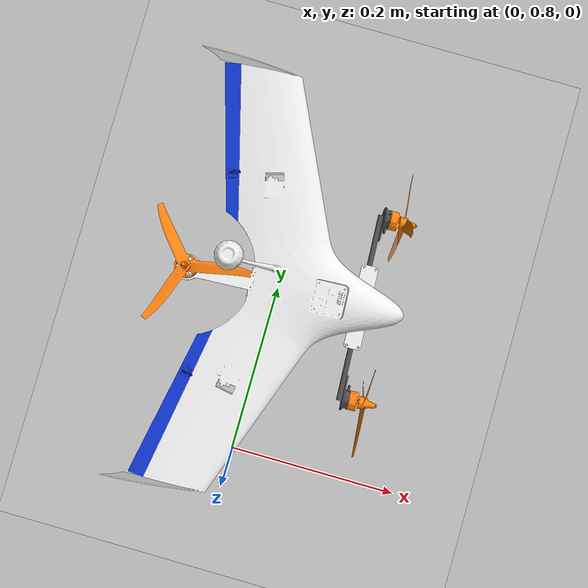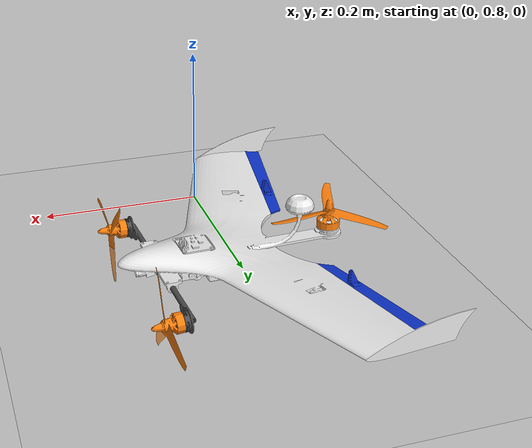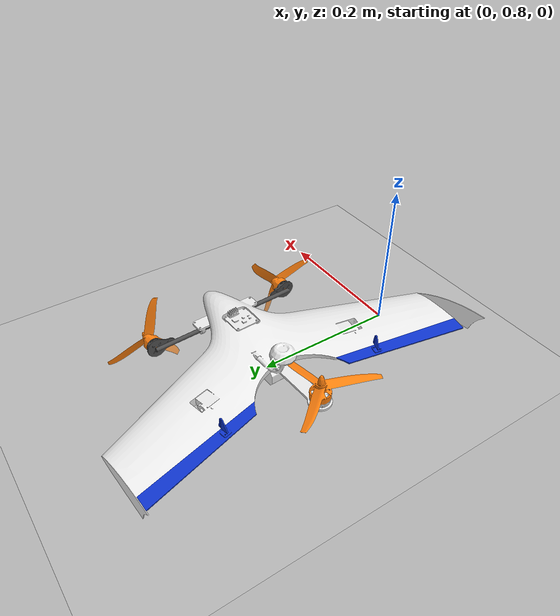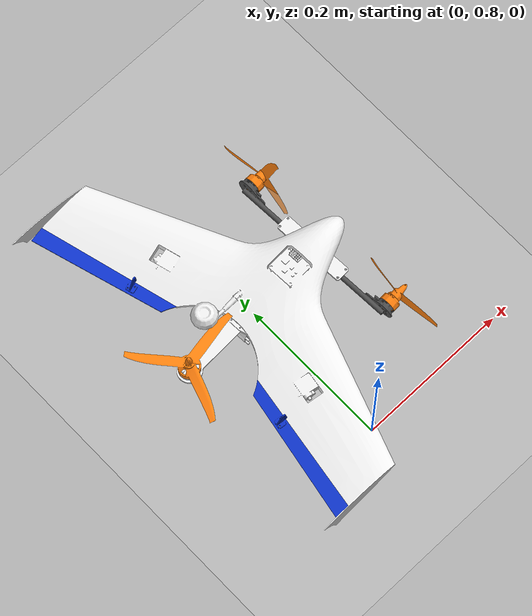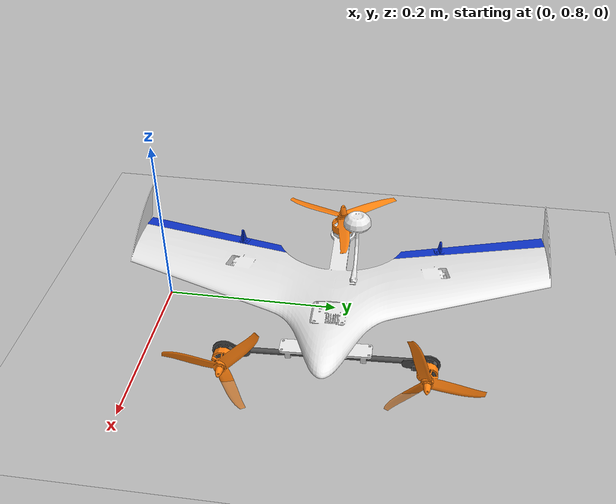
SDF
<sdf version="1.6">
 <world name="default">
  <model name="ground_plane">
   <static>1</static>
   <link name="link">
    <collision name="collision">
     <geometry><plane><normal>0 0 1</normal><size>100 100</size></plane></geometry>
     <surface>
      <contact><collide_bitmask>65535</collide_bitmask></contact>
      <friction><ode><mu>100</mu><mu2>50</mu2></ode></friction>
     </surface>
    </collision>
    <visual name="visual">
     <cast_shadows>0</cast_shadows>
     <geometry><plane><normal>0 0 1</normal><size>100 100</size></plane></geometry>
     <material>
      <script><uri>file://media/materials/scripts/gazebo.material</uri><name>Gazebo/Grey</name></script>
     </material>
    </visual>
   </link>
  </model>
  <model name="MiniHawk_0">
   <link name="link_1">
    <inertial>
     <mass>0.388</mass>
     <inertia>
      <ixx>0.107401</ixx>
      <ixy>-0.0018686</ixy>
      <ixz>-0.0144101</ixz>
      <iyy>0.176693</iyy>
      <iyz>-0.0010212</iyz>
      <izz>0.264048</izz>
     </inertia>
     <pose>0.013118 0.000197 0.004436 0 -0 0</pose>
    </inertial>
    <pose>0 0 0 3.14159 -0 0</pose>
    <visual name="visual">
     <geometry><mesh><uri>/home/steve/Desktop/OBJ2/MiniHawkBase.obj</uri><scale>1 1 1</scale></mesh></geometry>
     <material>
      <lighting>1</lighting>
      <script><uri>file://media/materials/scripts/gazebo.material</uri><name>Gazebo/White</name></script>
      <shader type="pixel"><normal_map>__default__</normal_map></shader>
      <emissive>0 0 0 1</emissive>
      <ambient>0.9 0.9 0.9 1</ambient>
      <diffuse>0.9 0.9 0.9 1</diffuse>
      <specular>0.01 0.01 0.01 1</specular>
     </material>
    </visual>
    <collision name="collision">
     <geometry><mesh><uri>/home/steve/Desktop/OBJ2/MiniHawkBase.obj</uri><scale>1 1 1</scale></mesh></geometry>
     <surface>
      <friction>
       <ode><mu>1</mu><mu2>1</mu2><fdir1>0 0 0</fdir1><slip1>0</slip1><slip2>0</slip2></ode>
       <torsional>
        <coefficient>1</coefficient>
        <patch_radius>0</patch_radius>
        <surface_radius>0</surface_radius>
        <use_patch_radius>1</use_patch_radius>
        <ode><slip>0</slip></ode>
       </torsional>
      </friction>
      <bounce><restitution_coefficient>0</restitution_coefficient><threshold>1e+06</threshold></bounce>
      <contact>
       <collide_without_contact>0</collide_without_contact>
       <collide_without_contact_bitmask>1</collide_without_contact_bitmask>
       <collide_bitmask>1</collide_bitmask>
       <ode>
        <soft_cfm>0</soft_cfm>
        <soft_erp>0.2</soft_erp>
        <kp>1e+13</kp>
        <kd>1</kd>
        <max_vel>0.01</max_vel>
        <min_depth>0</min_depth>
       </ode>
       <bullet>
        <split_impulse>1</split_impulse>
        <split_impulse_penetration_threshold>-0.01</split_impulse_penetration_threshold>
        <soft_cfm>0</soft_cfm>
        <soft_erp>0.2</soft_erp>
        <kp>1e+13</kp>
        <kd>1</kd>
       </bullet>
      </contact>
     </surface>
    </collision>
   </link>
   <link name="link_2">
    <inertial>
     <mass>0.002</mass>
     <inertia>
      <ixx>0.0059408</ixx>
      <ixy>-0.003228</ixy>
      <ixz>1.85e-05</ixz>
      <iyy>0.0018158</iyy>
      <iyz>3.22e-05</iyz>
      <izz>0.0077561</izz>
     </inertia>
     <pose>-0.094427 -0.164548 0.000979 0 -0 0</pose>
    </inertial>
    <pose>0 0 0 -3.14159 0 0</pose>
    <visual name="visual">
     <geometry>
      <mesh><uri>/home/steve/Desktop/OBJ2/MiniHawkElevonLeft.obj</uri><scale>1 1 1</scale></mesh>
     </geometry>
     <material>
      <lighting>1</lighting>
      <script><uri>file://media/materials/scripts/gazebo.material</uri><name>Gazebo/Grey</name></script>
      <shader type="pixel"><normal_map>__default__</normal_map></shader>
      <emissive>0 0 0 1</emissive>
      <ambient>0.05 0.2 0.8 1</ambient>
      <diffuse>0.05 0.2 0.8 1</diffuse>
      <specular>0.01 0.01 0.01 1</specular>
     </material>
    </visual>
    <collision name="collision">
     <geometry>
      <mesh><uri>/home/steve/Desktop/OBJ2/MiniHawkElevonLeft.obj</uri><scale>1 1 1</scale></mesh>
     </geometry>
     <surface>
      <friction>
       <ode><mu>1</mu><mu2>1</mu2><fdir1>0 0 0</fdir1><slip1>0</slip1><slip2>0</slip2></ode>
       <torsional>
        <coefficient>1</coefficient>
        <patch_radius>0</patch_radius>
        <surface_radius>0</surface_radius>
        <use_patch_radius>1</use_patch_radius>
        <ode><slip>0</slip></ode>
       </torsional>
      </friction>
      <bounce><restitution_coefficient>0</restitution_coefficient><threshold>1e+06</threshold></bounce>
      <contact>
       <collide_without_contact>0</collide_without_contact>
       <collide_without_contact_bitmask>1</collide_without_contact_bitmask>
       <collide_bitmask>1</collide_bitmask>
       <ode>
        <soft_cfm>0</soft_cfm>
        <soft_erp>0.2</soft_erp>
        <kp>1e+13</kp>
        <kd>1</kd>
        <max_vel>0.01</max_vel>
        <min_depth>0</min_depth>
       </ode>
       <bullet>
        <split_impulse>1</split_impulse>
        <split_impulse_penetration_threshold>-0.01</split_impulse_penetration_threshold>
        <soft_cfm>0</soft_cfm>
        <soft_erp>0.2</soft_erp>
        <kp>1e+13</kp>
        <kd>1</kd>
       </bullet>
      </contact>
     </surface>
    </collision>
   </link>
   <link name="link_3">
    <inertial>
     <mass>0.002</mass>
     <inertia>
      <ixx>0.0059408</ixx>
      <ixy>0.003228</ixy>
      <ixz>1.85e-05</ixz>
      <iyy>0.0018158</iyy>
      <iyz>-3.22e-05</iyz>
      <izz>0.0077561</izz>
     </inertia>
     <pose>-0.094427 0.164548 0.000979 0 -0 0</pose>
    </inertial>
    <pose>0 0 0 3.14159 -0 0</pose>
    <visual name="visual">
     <geometry>
      <mesh><uri>/home/steve/Desktop/OBJ2/MiniHawkElevonRight.obj</uri><scale>1 1 1</scale></mesh>
     </geometry>
     <material>
      <lighting>1</lighting>
      <script><uri>file://media/materials/scripts/gazebo.material</uri><name>Gazebo/Grey</name></script>
      <shader type="pixel"><normal_map>__default__</normal_map></shader>
      <emissive>0 0 0 1</emissive>
      <ambient>0.05 0.2 0.8 1</ambient>
      <diffuse>0.05 0.2 0.8 1</diffuse>
      <specular>0.01 0.01 0.01 1</specular>
     </material>
    </visual>
    <collision name="collision">
     <geometry>
      <mesh><uri>/home/steve/Desktop/OBJ2/MiniHawkElevonRight.obj</uri><scale>1 1 1</scale></mesh>
     </geometry>
     <surface>
      <friction>
       <ode><mu>1</mu><mu2>1</mu2><fdir1>0 0 0</fdir1><slip1>0</slip1><slip2>0</slip2></ode>
       <torsional>
        <coefficient>1</coefficient>
        <patch_radius>0</patch_radius>
        <surface_radius>0</surface_radius>
        <use_patch_radius>1</use_patch_radius>
        <ode><slip>0</slip></ode>
       </torsional>
      </friction>
      <bounce><restitution_coefficient>0</restitution_coefficient><threshold>1e+06</threshold></bounce>
      <contact>
       <collide_without_contact>0</collide_without_contact>
       <collide_without_contact_bitmask>1</collide_without_contact_bitmask>
       <collide_bitmask>1</collide_bitmask>
       <ode>
        <soft_cfm>0</soft_cfm>
        <soft_erp>0.2</soft_erp>
        <kp>1e+13</kp>
        <kd>1</kd>
        <max_vel>0.01</max_vel>
        <min_depth>0</min_depth>
       </ode>
       <bullet>
        <split_impulse>1</split_impulse>
        <split_impulse_penetration_threshold>-0.01</split_impulse_penetration_threshold>
        <soft_cfm>0</soft_cfm>
        <soft_erp>0.2</soft_erp>
        <kp>1e+13</kp>
        <kd>1</kd>
       </bullet>
      </contact>
     </surface>
    </collision>
   </link>
   <link name="link_4">
    <inertial>
     <mass>0.014</mass>
     <inertia>
      <ixx>0.0146583</ixx>
      <ixy>0.0148643</ixy>
      <ixz>-0.0019927</ixz>
      <iyy>0.0164121</iyy>
      <iyz>0.0018312</iyz>
      <izz>0.0305175</izz>
     </inertia>
     <pose>0.108611 -0.099554 0.013446 0 -0 0</pose>
    </inertial>
    <pose>0 0 0 3.14159 -0 0</pose>
    <visual name="visual">
     <geometry><mesh><uri>/home/steve/Desktop/OBJ2/MiniHawkArm.obj</uri><scale>1 1 1</scale></mesh></geometry>
     <material>
      <lighting>1</lighting>
      <script><uri>file://media/materials/scripts/gazebo.material</uri><name>Gazebo/DarkGrey</name></script>
      <shader type="pixel"><normal_map>__default__</normal_map></shader>
     </material>
    </visual>
    <collision name="collision">
     <geometry><mesh><uri>/home/steve/Desktop/OBJ2/MiniHawkArm.obj</uri><scale>1 1 1</scale></mesh></geometry>
     <surface>
      <friction>
       <ode><mu>1</mu><mu2>1</mu2><fdir1>0 0 0</fdir1><slip1>0</slip1><slip2>0</slip2></ode>
       <torsional>
        <coefficient>1</coefficient>
        <patch_radius>0</patch_radius>
        <surface_radius>0</surface_radius>
        <use_patch_radius>1</use_patch_radius>
        <ode><slip>0</slip></ode>
       </torsional>
      </friction>
      <bounce><restitution_coefficient>0</restitution_coefficient><threshold>1e+06</threshold></bounce>
      <contact>
       <collide_without_contact>0</collide_without_contact>
       <collide_without_contact_bitmask>1</collide_without_contact_bitmask>
       <collide_bitmask>1</collide_bitmask>
       <ode>
        <soft_cfm>0</soft_cfm>
        <soft_erp>0.2</soft_erp>
        <kp>1e+13</kp>
        <kd>1</kd>
        <max_vel>0.01</max_vel>
        <min_depth>0</min_depth>
       </ode>
       <bullet>
        <split_impulse>1</split_impulse>
        <split_impulse_penetration_threshold>-0.01</split_impulse_penetration_threshold>
        <soft_cfm>0</soft_cfm>
        <soft_erp>0.2</soft_erp>
        <kp>1e+13</kp>
        <kd>1</kd>
       </bullet>
      </contact>
     </surface>
    </collision>
   </link>
   <link name="link_5">
    <inertial>
     <mass>0.014</mass>
     <inertia>
      <ixx>0.0146583</ixx>
      <ixy>0.0148643</ixy>
      <ixz>-0.0019927</ixz>
      <iyy>0.0164121</iyy>
      <iyz>0.0018312</iyz>
      <izz>0.0305175</izz>
     </inertia>
     <pose>0.108611 -0.099554 0.013446 0 -0 0</pose>
    </inertial>
    <pose>0 0 -0.026 0 -0 0</pose>
    <visual name="visual">
     <geometry><mesh><uri>/home/steve/Desktop/OBJ2/MiniHawkArm.obj</uri><scale>1 1 1</scale></mesh></geometry>
     <material>
      <lighting>1</lighting>
      <script><uri>file://media/materials/scripts/gazebo.material</uri><name>Gazebo/DarkGrey</name></script>
      <shader type="pixel"><normal_map>__default__</normal_map></shader>
     </material>
    </visual>
    <collision name="collision">
     <geometry><mesh><uri>/home/steve/Desktop/OBJ2/MiniHawkArm.obj</uri><scale>1 1 1</scale></mesh></geometry>
     <surface>
      <friction>
       <ode><mu>1</mu><mu2>1</mu2><fdir1>0 0 0</fdir1><slip1>0</slip1><slip2>0</slip2></ode>
       <torsional>
        <coefficient>1</coefficient>
        <patch_radius>0</patch_radius>
        <surface_radius>0</surface_radius>
        <use_patch_radius>1</use_patch_radius>
        <ode><slip>0</slip></ode>
       </torsional>
      </friction>
      <bounce><restitution_coefficient>0</restitution_coefficient><threshold>1e+06</threshold></bounce>
      <contact>
       <collide_without_contact>0</collide_without_contact>
       <collide_without_contact_bitmask>1</collide_without_contact_bitmask>
       <collide_bitmask>1</collide_bitmask>
       <ode>
        <soft_cfm>0</soft_cfm>
        <soft_erp>0.2</soft_erp>
        <kp>1e+13</kp>
        <kd>1</kd>
        <max_vel>0.01</max_vel>
        <min_depth>0</min_depth>
       </ode>
       <bullet>
        <split_impulse>1</split_impulse>
        <split_impulse_penetration_threshold>-0.01</split_impulse_penetration_threshold>
        <soft_cfm>0</soft_cfm>
        <soft_erp>0.2</soft_erp>
        <kp>1e+13</kp>
        <kd>1</kd>
       </bullet>
      </contact>
     </surface>
    </collision>
   </link>
   <link name="link_6">
    <inertial>
     <mass>0.016</mass>
     <inertia>
      <ixx>0.0005953</ixx>
      <ixy>0</ixy>
      <ixz>-0.0028139</ixz>
      <iyy>0.0199553</iyy>
      <iyz>0</iyz>
      <izz>0.0194985</izz>
     </inertia>
     <pose>-0.11 0 -0.015988 0 -0 0</pose>
    </inertial>
    <pose>0 0 0 3.14159 -0 0</pose>
    <visual name="visual">
     <geometry><mesh><uri>/home/steve/Desktop/OBJ2/MiniHawkPropB.obj</uri><scale>1 1 1</scale></mesh></geometry>
     <material>
      <lighting>1</lighting>
      <script><uri>file://media/materials/scripts/gazebo.material</uri><name>Gazebo/Grey</name></script>
      <shader type="pixel"><normal_map>__default__</normal_map></shader>
      <ambient>1 0.5 0.05 1</ambient>
      <diffuse>1 0.5 0.05 1</diffuse>
      <specular>0.5 0.5 0.5 1</specular>
      <emissive>0 0 0 1</emissive>
     </material>
    </visual>
    <collision name="collision">
     <geometry><mesh><uri>/home/steve/Desktop/OBJ2/MiniHawkPropB.obj</uri><scale>1 1 1</scale></mesh></geometry>
     <surface>
      <friction>
       <ode><mu>1</mu><mu2>1</mu2><fdir1>0 0 0</fdir1><slip1>0</slip1><slip2>0</slip2></ode>
       <torsional>
        <coefficient>1</coefficient>
        <patch_radius>0</patch_radius>
        <surface_radius>0</surface_radius>
        <use_patch_radius>1</use_patch_radius>
        <ode><slip>0</slip></ode>
       </torsional>
      </friction>
      <bounce><restitution_coefficient>0</restitution_coefficient><threshold>1e+06</threshold></bounce>
      <contact>
       <collide_without_contact>0</collide_without_contact>
       <collide_without_contact_bitmask>1</collide_without_contact_bitmask>
       <collide_bitmask>1</collide_bitmask>
       <ode>
        <soft_cfm>0</soft_cfm>
        <soft_erp>0.2</soft_erp>
        <kp>1e+13</kp>
        <kd>1</kd>
        <max_vel>0.01</max_vel>
        <min_depth>0</min_depth>
       </ode>
       <bullet>
        <split_impulse>1</split_impulse>
        <split_impulse_penetration_threshold>-0.01</split_impulse_penetration_threshold>
        <soft_cfm>0</soft_cfm>
        <soft_erp>0.2</soft_erp>
        <kp>1e+13</kp>
        <kd>1</kd>
       </bullet>
      </contact>
     </surface>
    </collision>
   </link>
   <link name="link_7">
    <inertial>
     <mass>0.012</mass>
     <inertia>
      <ixx>0.0146902</ixx>
      <ixy>0.0160783</ixy>
      <ixz>-0.0020598</ixz>
      <iyy>0.0185055</iyy>
      <iyz>0.0018297</iyz>
      <izz>0.0325512</izz>
     </inertia>
     <pose>0.123851 -0.109999 0.014094 0 -0 0</pose>
    </inertial>
    <pose>0 0 0 3.14159 -0 0</pose>
    <visual name="visual">
     <geometry><mesh><uri>/home/steve/Desktop/OBJ2/MiniHawkPropA.obj</uri><scale>1 1 1</scale></mesh></geometry>
     <material>
      <lighting>1</lighting>
      <script><uri>file://media/materials/scripts/gazebo.material</uri><name>Gazebo/Grey</name></script>
      <shader type="pixel"><normal_map>__default__</normal_map></shader>
      <ambient>1 0.5 0.05 1</ambient>
      <diffuse>1 0.5 0.05 1</diffuse>
      <specular>0.5 0.5 0.5 1</specular>
      <emissive>0 0 0 1</emissive>
     </material>
    </visual>
    <collision name="collision">
     <geometry><mesh><uri>/home/steve/Desktop/OBJ2/MiniHawkPropA.obj</uri><scale>1 1 1</scale></mesh></geometry>
     <surface>
      <friction>
       <ode><mu>1</mu><mu2>1</mu2><fdir1>0 0 0</fdir1><slip1>0</slip1><slip2>0</slip2></ode>
       <torsional>
        <coefficient>1</coefficient>
        <patch_radius>0</patch_radius>
        <surface_radius>0</surface_radius>
        <use_patch_radius>1</use_patch_radius>
        <ode><slip>0</slip></ode>
       </torsional>
      </friction>
      <bounce><restitution_coefficient>0</restitution_coefficient><threshold>1e+06</threshold></bounce>
      <contact>
       <collide_without_contact>0</collide_without_contact>
       <collide_without_contact_bitmask>1</collide_without_contact_bitmask>
       <collide_bitmask>1</collide_bitmask>
       <ode>
        <soft_cfm>0</soft_cfm>
        <soft_erp>0.2</soft_erp>
        <kp>1e+13</kp>
        <kd>1</kd>
        <max_vel>0.01</max_vel>
        <min_depth>0</min_depth>
       </ode>
       <bullet>
        <split_impulse>1</split_impulse>
        <split_impulse_penetration_threshold>-0.01</split_impulse_penetration_threshold>
        <soft_cfm>0</soft_cfm>
        <soft_erp>0.2</soft_erp>
        <kp>1e+13</kp>
        <kd>1</kd>
       </bullet>
      </contact>
     </surface>
    </collision>
   </link>
   <link name="link_8">
    <inertial>
     <mass>0.012</mass>
     <inertia>
      <ixx>0.0146902</ixx>
      <ixy>0.0160783</ixy>
      <ixz>-0.0020598</ixz>
      <iyy>0.0185055</iyy>
      <iyz>0.0018297</iyz>
      <izz>0.0325512</izz>
     </inertia>
     <pose>0.123851 -0.109999 0.014094 0 -0 0</pose>
    </inertial>
    <pose>0 0 -0.02635 0 -0 0</pose>
    <visual name="visual">
     <geometry><mesh><uri>/home/steve/Desktop/OBJ2/MiniHawkPropA.obj</uri><scale>1 1 1</scale></mesh></geometry>
     <material>
      <lighting>1</lighting>
      <script><uri>file://media/materials/scripts/gazebo.material</uri><name>Gazebo/Grey</name></script>
      <shader type="pixel"><normal_map>__default__</normal_map></shader>
      <ambient>1 0.5 0.05 1</ambient>
      <diffuse>1 0.5 0.05 1</diffuse>
      <specular>0.5 0.5 0.5 1</specular>
      <emissive>0 0 0 1</emissive>
     </material>
    </visual>
    <collision name="collision">
     <geometry><mesh><uri>/home/steve/Desktop/OBJ2/MiniHawkPropA.obj</uri><scale>1 1 1</scale></mesh></geometry>
     <surface>
      <friction>
       <ode><mu>1</mu><mu2>1</mu2><fdir1>0 0 0</fdir1><slip1>0</slip1><slip2>0</slip2></ode>
       <torsional>
        <coefficient>1</coefficient>
        <patch_radius>0</patch_radius>
        <surface_radius>0</surface_radius>
        <use_patch_radius>1</use_patch_radius>
        <ode><slip>0</slip></ode>
       </torsional>
      </friction>
      <bounce><restitution_coefficient>0</restitution_coefficient><threshold>1e+06</threshold></bounce>
      <contact>
       <collide_without_contact>0</collide_without_contact>
       <collide_without_contact_bitmask>1</collide_without_contact_bitmask>
       <collide_bitmask>1</collide_bitmask>
       <ode>
        <soft_cfm>0</soft_cfm>
        <soft_erp>0.2</soft_erp>
        <kp>1e+13</kp>
        <kd>1</kd>
        <max_vel>0.01</max_vel>
        <min_depth>0</min_depth>
       </ode>
       <bullet>
        <split_impulse>1</split_impulse>
        <split_impulse_penetration_threshold>-0.01</split_impulse_penetration_threshold>
        <soft_cfm>0</soft_cfm>
        <soft_erp>0.2</soft_erp>
        <kp>1e+13</kp>
        <kd>1</kd>
       </bullet>
      </contact>
     </surface>
    </collision>
   </link>
   <joint name="link_1_JOINT_0" type="revolute">
    <parent>link_1</parent>
    <child>link_6</child>
    <pose>-0.11 0 0 0 -0 0</pose>
    <axis>
     <xyz>0 0 1</xyz>
     <use_parent_model_frame>0</use_parent_model_frame>
     <limit>
      <lower>-1.79769e+308</lower>
      <upper>1.79769e+308</upper>
      <effort>-1</effort>
      <velocity>-1</velocity>
     </limit>
     <dynamics>
      <spring_reference>0</spring_reference>
      <spring_stiffness>0</spring_stiffness>
      <damping>0</damping>
      <friction>0</friction>
     </dynamics>
    </axis>
    <physics>
     <ode><limit><cfm>0</cfm><erp>0.2</erp></limit><suspension><cfm>0</cfm><erp>0.2</erp></suspension></ode>
    </physics>
   </joint>
   <joint name="link_1_JOINT_1" type="revolute">
    <parent>link_1</parent>
    <child>link_2</child>
    <pose>-0.064008 -0.065469 0.002308 0 -0 0</pose>
    <axis>
     <xyz>0.039484 0.184531 0.002244</xyz>
     <use_parent_model_frame>0</use_parent_model_frame>
     <limit><lower>-0.79</lower><upper>0.52</upper><effort>-1</effort><velocity>-1</velocity></limit>
     <dynamics>
      <spring_reference>0</spring_reference>
      <spring_stiffness>0</spring_stiffness>
      <damping>0</damping>
      <friction>0</friction>
     </dynamics>
    </axis>
    <physics>
     <ode><limit><cfm>0</cfm><erp>0.2</erp></limit><suspension><cfm>0</cfm><erp>0.2</erp></suspension></ode>
    </physics>
   </joint>
   <joint name="link_1_JOINT_2" type="revolute">
    <parent>link_1</parent>
    <child>link_3</child>
    <pose>-0.064008 0.065469 0.002308 0 -0 0</pose>
    <axis>
     <xyz>0.039484 -0.184531 0.002244</xyz>
     <use_parent_model_frame>0</use_parent_model_frame>
     <limit><lower>-0.52</lower><upper>0.79</upper><effort>-1</effort><velocity>-1</velocity></limit>
     <dynamics>
      <spring_reference>0</spring_reference>
      <spring_stiffness>0</spring_stiffness>
      <damping>0</damping>
      <friction>0</friction>
     </dynamics>
    </axis>
    <physics>
     <ode><limit><cfm>0</cfm><erp>0.2</erp></limit><suspension><cfm>0</cfm><erp>0.2</erp></suspension></ode>
    </physics>
   </joint>
   <joint name="link_1_JOINT_3" type="revolute">
    <parent>link_1</parent>
    <child>link_4</child>
    <pose>0.1 0 0.013 0 -0 0</pose>
    <axis>
     <xyz>0 1 0</xyz>
     <use_parent_model_frame>0</use_parent_model_frame>
     <limit><lower>-0</lower><upper>1.6581</upper><effort>-1</effort><velocity>-1</velocity></limit>
     <dynamics>
      <spring_reference>0</spring_reference>
      <spring_stiffness>0</spring_stiffness>
      <damping>0</damping>
      <friction>0</friction>
     </dynamics>
    </axis>
    <physics>
     <ode><limit><cfm>0</cfm><erp>0.2</erp></limit><suspension><cfm>0</cfm><erp>0.2</erp></suspension></ode>
    </physics>
   </joint>
   <joint name="link_1_JOINT_4" type="revolute">
    <parent>link_1</parent>
    <child>link_5</child>
    <pose>0.1 0 0.013 0 -0 0</pose>
    <axis>
     <xyz>0 1 0</xyz>
     <use_parent_model_frame>0</use_parent_model_frame>
     <limit><lower>-1.6581</lower><upper>0</upper><effort>-1</effort><velocity>-1</velocity></limit>
     <dynamics>
      <spring_reference>0</spring_reference>
      <spring_stiffness>0</spring_stiffness>
      <damping>0</damping>
      <friction>0</friction>
     </dynamics>
    </axis>
    <physics>
     <ode><limit><cfm>0</cfm><erp>0.2</erp></limit><suspension><cfm>0</cfm><erp>0.2</erp></suspension></ode>
    </physics>
   </joint>
   <joint name="link_4_JOINT_1" type="revolute">
    <parent>link_4</parent>
    <child>link_7</child>
    <pose>0.103821 -0.11 0.013175 0 -0 0</pose>
    <axis>
     <xyz>1 0 0</xyz>
     <use_parent_model_frame>0</use_parent_model_frame>
     <limit>
      <lower>-1.79769e+308</lower>
      <upper>1.79769e+308</upper>
      <effort>-1</effort>
      <velocity>-1</velocity>
     </limit>
     <dynamics>
      <spring_reference>0</spring_reference>
      <spring_stiffness>0</spring_stiffness>
      <damping>0</damping>
      <friction>0</friction>
     </dynamics>
    </axis>
    <physics>
     <ode><limit><cfm>0</cfm><erp>0.2</erp></limit><suspension><cfm>0</cfm><erp>0.2</erp></suspension></ode>
    </physics>
   </joint>
   <joint name="link_5_JOINT_1" type="revolute">
    <parent>link_5</parent>
    <child>link_8</child>
    <pose>0.103821 -0.11 0.013175 0 -0 0</pose>
    <axis>
     <xyz>1 0 0</xyz>
     <use_parent_model_frame>0</use_parent_model_frame>
     <limit>
      <lower>-1.79769e+308</lower>
      <upper>1.79769e+308</upper>
      <effort>-1</effort>
      <velocity>-1</velocity>
     </limit>
     <dynamics>
      <spring_reference>0</spring_reference>
      <spring_stiffness>0</spring_stiffness>
      <damping>0</damping>
      <friction>0</friction>
     </dynamics>
    </axis>
    <physics>
     <ode><limit><cfm>0</cfm><erp>0.2</erp></limit><suspension><cfm>0</cfm><erp>0.2</erp></suspension></ode>
    </physics>
   </joint>
   <static>0</static>
   <pose>0.000383 0.999236 0.031599 8e-06 -2e-06 0.049333</pose>
  </model>
 </world>
</sdf>
